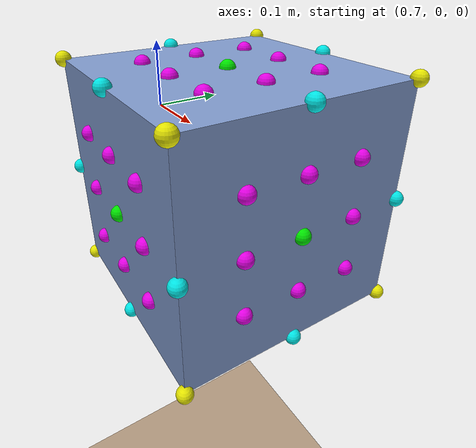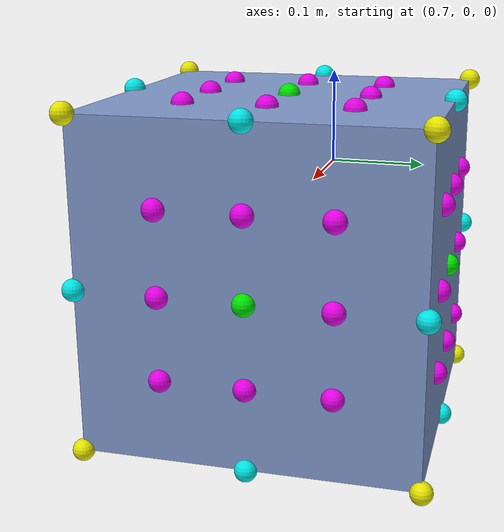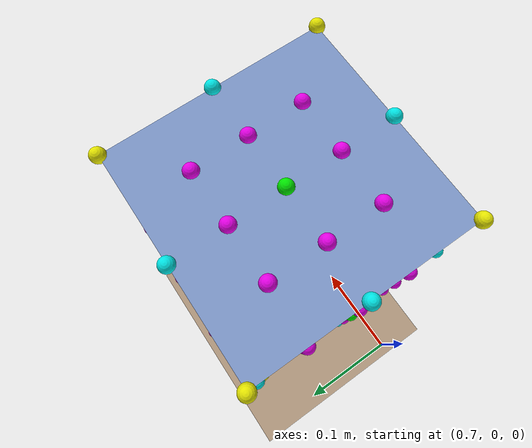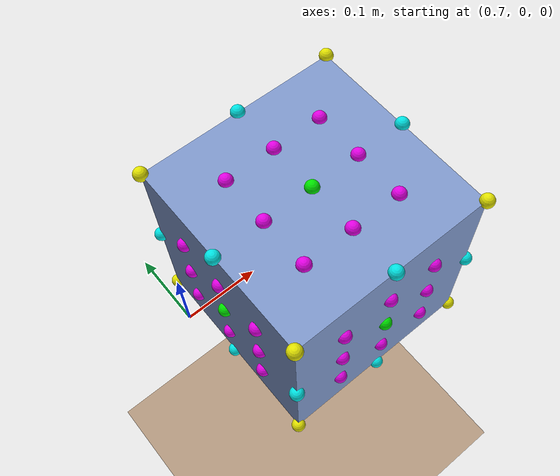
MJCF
<mujoco model="table_scenario">
    <compiler coordinate="local" angle="radian" strippath="false" />
    <size njmax="795" nconmax="250" nstack="631875" />

   <asset>
        <material name="MatGnd" specular=".3" shininess=".3" reflectance="0.3" rgba=".5 .55 .5 1"/>
   </asset>

	<visual>
        <map fogstart="1.5" fogend="3"/>
		<quality shadowsize="2048"/>
	</visual>

   <default>
		<geom margin="0.001"/>
   </default>

    <worldbody>
        <light directional="false" cutoff="90" exponent="1" diffuse="1 1 1" specular="0 0 0" pos="1 0 1.5" dir="-1 0 -2.5"/>
        <geom name="ground" type="plane" pos="0 0 -0.925" size="4 4 .05" rgba="0.7 0.6 0.5 1"/>
        <geom name="tableTop" material="MatGnd" type="plane" pos="0.95 0.0 -0.2" size="0.75 0.95 0.5" rgba=".6 .6 .5 1" contype="1" conaffinity="1"/>
        <!--  ================= OBJECT ================= /-->
         <body name="object" pos="0.25 0.0 0.15" quat="0 -0 0 0">
            <geom type="box" name="target_obj" size="0.15 0.15 0.15" pos="0.65 0.0 -0.199" rgba="0.5 0.6 0.8 1" user="1" contype="1" conaffinity="1"/>
            <joint name="fr" type="free" limited='false' damping="0" armature="0" user="010"/>
            <geom name="f1" type="sphere" size="0.01" rgba="0.0 0.9 0.0 1" pos="0.65   0.    -0.349" />
            <geom name="f2" type="sphere" size="0.01" rgba="0.0 0.9 0.0 1" pos="0.65   0.15  -0.199" />
            <geom name="f3" type="sphere" size="0.01" rgba="0.0 0.9 0.0 1" pos="0.65   0.    -0.049" />
            <geom name="f4" type="sphere" size="0.01" rgba="0.0 0.9 0.0 1" pos="0.65  -0.15  -0.199" />
            <geom name="f5" type="sphere" size="0.01" rgba="0.0 0.9 0.0 1" pos="0.8    0.    -0.199" />
            <geom name="f6" type="sphere" size="0.01" rgba="0.0 0.9 0.0 1" pos="0.5    0.    -0.199" />

            <geom name="c1" type="sphere" size="0.01" rgba="0.9 0.9 0.0 1" pos="0.8    0.15  -0.349" />
            <geom name="c2" type="sphere" size="0.01" rgba="0.9 0.9 0.0 1" pos="0.5    0.15  -0.349" />
            <geom name="c3" type="sphere" size="0.01" rgba="0.9 0.9 0.0 1" pos="0.5   -0.15  -0.349" />
            <geom name="c4" type="sphere" size="0.01" rgba="0.9 0.9 0.0 1" pos="0.8   -0.15  -0.349" />
            <geom name="c5" type="sphere" size="0.01" rgba="0.9 0.9 0.0 1" pos="0.8   -0.15  -0.049" />
            <geom name="c6" type="sphere" size="0.01" rgba="0.9 0.9 0.0 1" pos="0.8    0.15  -0.049" />
            <geom name="c7" type="sphere" size="0.01" rgba="0.9 0.9 0.0 1" pos="0.5    0.15  -0.049" />
            <geom name="c8" type="sphere" size="0.01" rgba="0.9 0.9 0.0 1" pos="0.5   -0.15  -0.049" />

            <geom name="c1c2" type="sphere" size="0.01" rgba="0.0 0.9 0.9 1" pos="0.65   0.15  -0.349" />
            <geom name="c2c3" type="sphere" size="0.01" rgba="0.0 0.9 0.9 1" pos="0.5    0.    -0.349" />
            <geom name="c3c4" type="sphere" size="0.01" rgba="0.0 0.9 0.9 1" pos="0.65  -0.15  -0.349" />
            <geom name="c4c5" type="sphere" size="0.01" rgba="0.0 0.9 0.9 1" pos="0.8   -0.15  -0.199" />
            <geom name="c5c6" type="sphere" size="0.01" rgba="0.0 0.9 0.9 1" pos="0.8    0.    -0.049" />
            <geom name="c6c7" type="sphere" size="0.01" rgba="0.0 0.9 0.9 1" pos="0.65   0.15  -0.049" />
            <geom name="c7c8" type="sphere" size="0.01" rgba="0.0 0.9 0.9 1" pos="0.5    0.    -0.049" />
            <geom name="c8c5" type="sphere" size="0.01" rgba="0.0 0.9 0.9 1" pos="0.65  -0.15  -0.049" />
            <geom name="c4c1" type="sphere" size="0.01" rgba="0.0 0.9 0.9 1" pos="0.8    0.    -0.349" />
            <geom name="c6c1" type="sphere" size="0.01" rgba="0.0 0.9 0.9 1" pos="0.8    0.15  -0.199" />
            <geom name="c7c2" type="sphere" size="0.01" rgba="0.0 0.9 0.9 1" pos="0.5    0.15  -0.199" />
            <geom name="c8c3" type="sphere" size="0.01" rgba="0.0 0.9 0.9 1" pos="0.5   -0.15  -0.199" />

            <geom name="f1c1" type="sphere" size="0.01" rgba="0.9 0.0 0.9 1" pos="0.725  0.075 -0.349" />
            <geom name="f1c2" type="sphere" size="0.01" rgba="0.9 0.0 0.9 1" pos="0.575  0.075 -0.349" />
            <geom name="f1c3" type="sphere" size="0.01" rgba="0.9 0.0 0.9 1" pos="0.575 -0.075 -0.349" />
            <geom name="f1c4" type="sphere" size="0.01" rgba="0.9 0.0 0.9 1" pos="0.725 -0.075 -0.349" />
            <geom name="f1c1c2" type="sphere" size="0.01" rgba="0.9 0.0 0.9 1" pos="0.65   0.075 -0.349" />
            <geom name="f1c2c3" type="sphere" size="0.01" rgba="0.9 0.0 0.9 1" pos="0.575  0.    -0.349" />
            <geom name="f1c3c4" type="sphere" size="0.01" rgba="0.9 0.0 0.9 1" pos=" 0.65  -0.075 -0.349" />
            <geom name="f1c4c1" type="sphere" size="0.01" rgba="0.9 0.0 0.9 1" pos="0.725  0.    -0.349" />

            <geom name="f2c1" type="sphere" size="0.01" rgba="0.9 0.0 0.9 1" pos="0.725  0.15  -0.274" />
            <geom name="f2c2" type="sphere" size="0.01" rgba="0.9 0.0 0.9 1" pos="0.575  0.15  -0.274" />
            <geom name="f2c6" type="sphere" size="0.01" rgba="0.9 0.0 0.9 1" pos="0.725  0.15  -0.124" />
            <geom name="f2c7" type="sphere" size="0.01" rgba="0.9 0.0 0.9 1" pos="0.575  0.15  -0.124" />
            <geom name="f2c1c2" type="sphere" size="0.01" rgba="0.9 0.0 0.9 1" pos="0.65   0.15  -0.274" />
            <geom name="f2c7c2" type="sphere" size="0.01" rgba="0.9 0.0 0.9 1" pos="0.575  0.15  -0.199" />
            <geom name="f2c6c1" type="sphere" size="0.01" rgba="0.9 0.0 0.9 1" pos="0.725  0.15  -0.199" />
            <geom name="f2c6c7" type="sphere" size="0.01" rgba="0.9 0.0 0.9 1" pos="0.65   0.15  -0.124" />

            <geom name="f3c6" type="sphere" size="0.01" rgba="0.9 0.0 0.9 1" pos="0.725  0.075 -0.049" />
            <geom name="f3c7" type="sphere" size="0.01" rgba="0.9 0.0 0.9 1" pos="0.575  0.075 -0.049" />
            <geom name="f3c8" type="sphere" size="0.01" rgba="0.9 0.0 0.9 1" pos="0.575 -0.075 -0.049" />
            <geom name="f3c5" type="sphere" size="0.01" rgba="0.9 0.0 0.9 1" pos="0.725 -0.075 -0.049" />
            <geom name="f3c1c2" type="sphere" size="0.01" rgba="0.9 0.0 0.9 1" pos="0.575  0.    -0.049" />
            <geom name="f3c8c5" type="sphere" size="0.01" rgba="0.9 0.0 0.9 1" pos="0.65  -0.075 -0.049" />
            <geom name="f3c5c6" type="sphere" size="0.01" rgba="0.9 0.0 0.9 1" pos="0.725  0.    -0.049" />
            <geom name="f3c6c7" type="sphere" size="0.01" rgba="0.9 0.0 0.9 1" pos="0.65   0.075 -0.049" />

            <geom name="f4c3" type="sphere" size="0.01" rgba="0.9 0.0 0.9 1" pos="0.575 -0.15  -0.274" />
            <geom name="f4c4" type="sphere" size="0.01" rgba="0.9 0.0 0.9 1" pos="0.725 -0.15  -0.274" />
            <geom name="f4c5" type="sphere" size="0.01" rgba="0.9 0.0 0.9 1" pos="0.725 -0.15  -0.124" />
            <geom name="f4c8" type="sphere" size="0.01" rgba="0.9 0.0 0.9 1" pos="0.575 -0.15  -0.124" />
            <geom name="f4c3c4" type="sphere" size="0.01" rgba="0.9 0.0 0.9 1" pos="0.65  -0.15  -0.274" />
            <geom name="f4c4c5" type="sphere" size="0.01" rgba="0.9 0.0 0.9 1" pos="0.725 -0.15  -0.199" />
            <geom name="f4c8c5" type="sphere" size="0.01" rgba="0.9 0.0 0.9 1" pos="0.65  -0.15  -0.124" />
            <geom name="f4c8c3" type="sphere" size="0.01" rgba="0.9 0.0 0.9 1" pos="0.575 -0.15  -0.199" />

            <geom name="f5c1" type="sphere" size="0.01" rgba="0.9 0.0 0.9 1" pos="0.8    0.075 -0.274" />
            <geom name="f5c4" type="sphere" size="0.01" rgba="0.9 0.0 0.9 1" pos="0.8   -0.075 -0.274" />
            <geom name="f5c5" type="sphere" size="0.01" rgba="0.9 0.0 0.9 1" pos="0.8   -0.075 -0.124" />
            <geom name="f5c6" type="sphere" size="0.01" rgba="0.9 0.0 0.9 1" pos="0.8    0.075 -0.124" />
            <geom name="f5c4c1" type="sphere" size="0.01" rgba="0.9 0.0 0.9 1" pos="0.8    0.    -0.274" />
            <geom name="f5c6c1" type="sphere" size="0.01" rgba="0.9 0.0 0.9 1" pos="0.8    0.075 -0.199" />
            <geom name="f5c5c6" type="sphere" size="0.01" rgba="0.9 0.0 0.9 1" pos="0.8    0.    -0.124" />
            <geom name="f5c4c5" type="sphere" size="0.01" rgba="0.9 0.0 0.9 1" pos="0.8   -0.075 -0.199" />

            <geom name="f6c2" type="sphere" size="0.01" rgba="0.9 0.0 0.9 1" pos="0.5    0.075 -0.274" />
            <geom name="f6c3" type="sphere" size="0.01" rgba="0.9 0.0 0.9 1" pos="0.5   -0.075 -0.274" />
            <geom name="f6c7" type="sphere" size="0.01" rgba="0.9 0.0 0.9 1" pos="0.5    0.075 -0.124" />
            <geom name="f6c8" type="sphere" size="0.01" rgba="0.9 0.0 0.9 1" pos="0.5   -0.075 -0.124" />
            <geom name="f6c2c3" type="sphere" size="0.01" rgba="0.9 0.0 0.9 1" pos="0.5    0.    -0.274" />
            <geom name="f6c7c8" type="sphere" size="0.01" rgba="0.9 0.0 0.9 1" pos="0.5    0.    -0.124" />
            <geom name="f6c7c2" type="sphere" size="0.01" rgba="0.9 0.0 0.9 1" pos="0.5    0.075 -0.199" />
            <geom name="f6c8c3" type="sphere" size="0.01" rgba="0.9 0.0 0.9 1" pos="0.5   -0.075 -0.199" />

        </body>
    </worldbody>
</mujoco>
